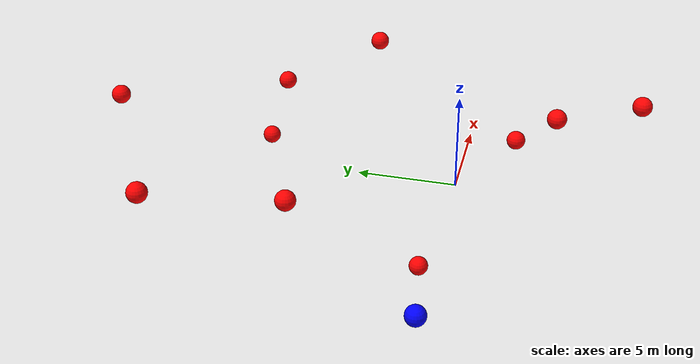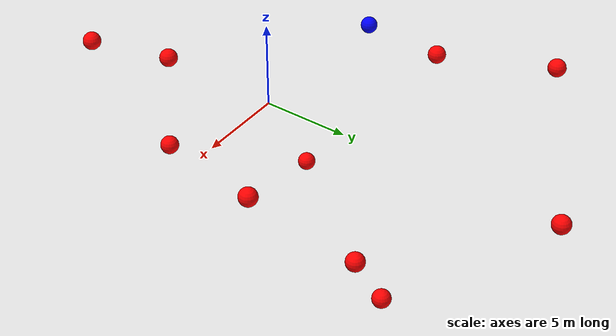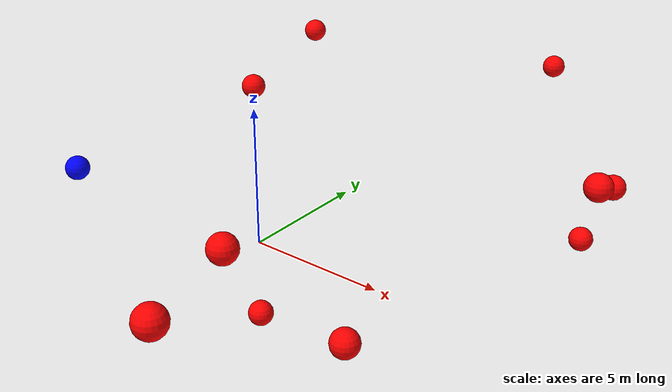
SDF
<?xml version="1.0" ?>
<sdf version="1.8">
    <world name="3d_world">
        <physics name="1ms" type="ode">
            <max_step_size>0.001</max_step_size>
            <real_time_factor>1.0</real_time_factor>
            <real_time_update_rate>1000.0</real_time_update_rate>
        </physics>
        <gravity>0 0 0</gravity>

        <plugin
            filename="gz-sim-physics-system"
            name="gz::sim::v8::systems::Physics">
        </plugin>
        <plugin
            filename="libignition-gazebo-user-commands-system.so"
            name="ignition::gazebo::systems::UserCommands">
        </plugin>
        <plugin
            filename="gz-sim-scene-broadcaster-system"
            name="gz::sim::systems::SceneBroadcaster">
        </plugin>
        <plugin
            filename="gz-sim-sensors-system"
            name="gz::sim::systems::Sensors">
            <render_engine>ogre2</render_engine>
        </plugin>

        <light type="directional" name="sun">
            <cast_shadows>true</cast_shadows>
            <pose>0 0 10 0 0 0</pose>
            <diffuse>0.8 0.8 0.8 1</diffuse>
            <specular>0.2 0.2 0.2 1</specular>
            <attenuation>
                <range>1000</range>
                <constant>0.9</constant>
                <linear>0.01</linear>
                <quadratic>0.001</quadratic>
            </attenuation>
            <direction>-0.5 0.1 -0.9</direction>
        </light>

        <!-- AGENTE -->
        <model name='agente' canonical_link='chassis'>
            <pose relative_to='world'>-10.0 0 0.0 0 0 0</pose>
            <link name='chassis'>
                <pose relative_to='__model__'>0.0 0 0.0 0 0 0</pose>
                <inertial>
                    <mass>1.14395</mass>
                    <inertia>
                        <ixx>0.095329</ixx>
                        <ixy>0</ixy>
                        <ixz>0</ixz>
                        <iyy>0.381317</iyy>
                        <iyz>0</iyz>
                        <izz>0.476646</izz>
                    </inertia>
                </inertial>
                <visual name='visual'>
                    <geometry>
                        <sphere>
                            <radius>0.5</radius>
                        </sphere>
                    </geometry>
                    <material>
                        <ambient>0.0 0.0 1.0 1</ambient>
                        <diffuse>0.0 0.0 1.0 1</diffuse>
                        <specular>0.0 0.0 1.0 1</specular>
                    </material>
                </visual>
                <collision name='collision'>
                    <geometry>
                        <sphere>
                            <radius>0.5</radius>
                        </sphere>
                    </geometry>
                </collision>
                <enable_gravity>false</enable_gravity>
            </link>

            <link name='lidar_link'>
                <pose relative_to='chassis'>0.0 0 0.1 0 0 0</pose>
                <inertial>
                    <mass>0.1</mass>
                    <inertia>
                        <ixx>0.000166667</ixx>
                        <iyy>0.000166667</iyy>
                        <izz>0.000166667</izz>
                    </inertia>
                </inertial>
                <collision name='collision'>
                    <geometry>
                        <cylinder>
                            <radius>0.05</radius>
                            <length>0.1</length>
                        </cylinder>
                    </geometry>
                </collision>
                <visual name='visual'>
                    <geometry>
                        <cylinder>
                            <radius>0.05</radius>
                            <length>0.1</length>
                        </cylinder>
                    </geometry>
                    <material>
                        <ambient>0.0 1.0 0.0 1</ambient>
                        <diffuse>0.0 1.0 0.0 1</diffuse>
                        <specular>0.0 1.0 0.0 1</specular>
                    </material>
                </visual>
                <sensor name="lidar" type="gpu_lidar">
                    <topic>scan</topic>
                    <update_rate>10</update_rate>
                    <lidar>
                        <scan>
                            <horizontal>
                                <samples>5000</samples>
                                <resolution>1</resolution>
                                <min_angle>-3.14159</min_angle>
                                <max_angle>3.14159</max_angle>
                            </horizontal>
                        </scan>
                        <range>
                            <min>0.1</min>
                            <max>10.0</max>
                            <resolution>0.01</resolution>
                        </range>
                    </lidar>
                    <visualize>true</visualize>
                    <always_on>true</always_on>
                    <update_rate>10</update_rate>
                    <pose_frame>lidar</pose_frame>
                </sensor>
                <enable_gravity>false</enable_gravity>
            </link>

            <joint name="lidar_joint" type="fixed">
                <parent>chassis</parent>
                <child>lidar_link</child>
            </joint>

            <plugin
                filename="ignition-gazebo-joint-state-publisher-system"
                name="ignition::gazebo::systems::JointStatePublisher">
            </plugin>
            <plugin
                filename="ignition-gazebo-odometry-publisher-system"
                name="ignition::gazebo::systems::OdometryPublisher">
                <dimensions>3</dimensions>
            </plugin>
            <plugin
                filename="ignition-gazebo-velocity-control-system"
                name="ignition::gazebo::systems::VelocityControl">
                <initial_linear>0.0 0 0</initial_linear>
                <initial_angular>0 0 0.0</initial_angular>
            </plugin>
            <plugin
                filename="libignition-gazebo-pose-publisher-system.so"
                name="ignition::gazebo::systems::PosePublisher">
                <topic>/agente/pose</topic>
                <frame_id>agente</frame_id>
                <update_rate>30</update_rate>
            </plugin>
        </model>

        <!-- OBSTACLE 1 -->
        <model name='obstacle_1' canonical_link='obstacle'>
            <static>false</static>
            <pose relative_to='world'>1.81 18.70 1.79 0 0 0</pose>
            <link name='obstacle'>
                <pose relative_to='__model__'>0.0 0 0.0 0 0 0</pose>
                <visual name='visual'>
                    <geometry>
                        <sphere>
                            <radius>0.50</radius>
                        </sphere>
                    </geometry>
                    <material>
                        <ambient>1.0 0.0 0.0 1</ambient>
                        <diffuse>1.0 0.0 0.0 1</diffuse>
                        <specular>1.0 0.0 0.0 1</specular>
                    </material>
                </visual>
                <collision name='collision'>
                    <geometry>
                        <sphere>
                            <radius>0.50</radius>
                        </sphere>
                    </geometry>
                </collision>
                <enable_gravity>false</enable_gravity>
            </link>

            <plugin
                filename="ignition-gazebo-velocity-control-system"
                name="ignition::gazebo::systems::VelocityControl">
                <initial_linear>-0.19 -1.98 -0.19</initial_linear>
                <initial_angular>0 0 0</initial_angular>
            </plugin>

            <plugin
                filename="ignition-gazebo-odometry-publisher-system"
                name="ignition::gazebo::systems::OdometryPublisher">
                <dimensions>3</dimensions>
            </plugin>
        </model>

        <!-- OBSTACLE 2 -->
        <model name='obstacle_2' canonical_link='obstacle'>
            <static>false</static>
            <pose relative_to='world'>5.64 -2.40 -0.42 0 0 0</pose>
            <link name='obstacle'>
                <pose relative_to='__model__'>0.0 0 0.0 0 0 0</pose>
                <visual name='visual'>
                    <geometry>
                        <sphere>
                            <radius>0.50</radius>
                        </sphere>
                    </geometry>
                    <material>
                        <ambient>1.0 0.0 0.0 1</ambient>
                        <diffuse>1.0 0.0 0.0 1</diffuse>
                        <specular>1.0 0.0 0.0 1</specular>
                    </material>
                </visual>
                <collision name='collision'>
                    <geometry>
                        <sphere>
                            <radius>0.50</radius>
                        </sphere>
                    </geometry>
                </collision>
                <enable_gravity>false</enable_gravity>
            </link>

            <plugin
                filename="ignition-gazebo-velocity-control-system"
                name="ignition::gazebo::systems::VelocityControl">
                <initial_linear>-1.90 0.61 0.11</initial_linear>
                <initial_angular>0 0 0</initial_angular>
            </plugin>

            <plugin
                filename="ignition-gazebo-odometry-publisher-system"
                name="ignition::gazebo::systems::OdometryPublisher">
                <dimensions>3</dimensions>
            </plugin>
        </model>

        <!-- OBSTACLE 3 -->
        <model name='obstacle_3' canonical_link='obstacle'>
            <static>false</static>
            <pose relative_to='world'>6.81 12.01 -2.82 0 0 0</pose>
            <link name='obstacle'>
                <pose relative_to='__model__'>0.0 0 0.0 0 0 0</pose>
                <visual name='visual'>
                    <geometry>
                        <sphere>
                            <radius>0.50</radius>
                        </sphere>
                    </geometry>
                    <material>
                        <ambient>1.0 0.0 0.0 1</ambient>
                        <diffuse>1.0 0.0 0.0 1</diffuse>
                        <specular>1.0 0.0 0.0 1</specular>
                    </material>
                </visual>
                <collision name='collision'>
                    <geometry>
                        <sphere>
                            <radius>0.50</radius>
                        </sphere>
                    </geometry>
                </collision>
                <enable_gravity>false</enable_gravity>
            </link>

            <plugin
                filename="ignition-gazebo-velocity-control-system"
                name="ignition::gazebo::systems::VelocityControl">
                <initial_linear>-0.31 -1.92 0.45</initial_linear>
                <initial_angular>0 0 0</initial_angular>
            </plugin>

            <plugin
                filename="ignition-gazebo-odometry-publisher-system"
                name="ignition::gazebo::systems::OdometryPublisher">
                <dimensions>3</dimensions>
            </plugin>
        </model>

        <!-- OBSTACLE 4 -->
        <model name='obstacle_4' canonical_link='obstacle'>
            <static>false</static>
            <pose relative_to='world'>-8.19 13.18 3.01 0 0 0</pose>
            <link name='obstacle'>
                <pose relative_to='__model__'>0.0 0 0.0 0 0 0</pose>
                <visual name='visual'>
                    <geometry>
                        <sphere>
                            <radius>0.50</radius>
                        </sphere>
                    </geometry>
                    <material>
                        <ambient>1.0 0.0 0.0 1</ambient>
                        <diffuse>1.0 0.0 0.0 1</diffuse>
                        <specular>1.0 0.0 0.0 1</specular>
                    </material>
                </visual>
                <collision name='collision'>
                    <geometry>
                        <sphere>
                            <radius>0.50</radius>
                        </sphere>
                    </geometry>
                </collision>
                <enable_gravity>false</enable_gravity>
            </link>

            <plugin
                filename="ignition-gazebo-velocity-control-system"
                name="ignition::gazebo::systems::VelocityControl">
                <initial_linear>1.31 -1.47 -0.34</initial_linear>
                <initial_angular>0 0 0</initial_angular>
            </plugin>

            <plugin
                filename="ignition-gazebo-odometry-publisher-system"
                name="ignition::gazebo::systems::OdometryPublisher">
                <dimensions>3</dimensions>
            </plugin>
        </model>

        <!-- OBSTACLE 5 -->
        <model name='obstacle_5' canonical_link='obstacle'>
            <static>false</static>
            <pose relative_to='world'>2.87 -4.56 2.84 0 0 0</pose>
            <link name='obstacle'>
                <pose relative_to='__model__'>0.0 0 0.0 0 0 0</pose>
                <visual name='visual'>
                    <geometry>
                        <sphere>
                            <radius>0.50</radius>
                        </sphere>
                    </geometry>
                    <material>
                        <ambient>1.0 0.0 0.0 1</ambient>
                        <diffuse>1.0 0.0 0.0 1</diffuse>
                        <specular>1.0 0.0 0.0 1</specular>
                    </material>
                </visual>
                <collision name='collision'>
                    <geometry>
                        <sphere>
                            <radius>0.50</radius>
                        </sphere>
                    </geometry>
                </collision>
                <enable_gravity>false</enable_gravity>
            </link>

            <plugin
                filename="ignition-gazebo-velocity-control-system"
                name="ignition::gazebo::systems::VelocityControl">
                <initial_linear>0.40 0.74 -0.46</initial_linear>
                <initial_angular>0 0 0</initial_angular>
            </plugin>

            <plugin
                filename="ignition-gazebo-odometry-publisher-system"
                name="ignition::gazebo::systems::OdometryPublisher">
                <dimensions>3</dimensions>
            </plugin>
        </model>

        <!-- OBSTACLE 6 -->
        <model name='obstacle_6' canonical_link='obstacle'>
            <static>false</static>
            <pose relative_to='world'>9.57 6.11 2.68 0 0 0</pose>
            <link name='obstacle'>
                <pose relative_to='__model__'>0.0 0 0.0 0 0 0</pose>
                <visual name='visual'>
                    <geometry>
                        <sphere>
                            <radius>0.50</radius>
                        </sphere>
                    </geometry>
                    <material>
                        <ambient>1.0 0.0 0.0 1</ambient>
                        <diffuse>1.0 0.0 0.0 1</diffuse>
                        <specular>1.0 0.0 0.0 1</specular>
                    </material>
                </visual>
                <collision name='collision'>
                    <geometry>
                        <sphere>
                            <radius>0.50</radius>
                        </sphere>
                    </geometry>
                </collision>
                <enable_gravity>false</enable_gravity>
            </link>

            <plugin
                filename="ignition-gazebo-velocity-control-system"
                name="ignition::gazebo::systems::VelocityControl">
                <initial_linear>-1.51 -1.20 -0.52</initial_linear>
                <initial_angular>0 0 0</initial_angular>
            </plugin>

            <plugin
                filename="ignition-gazebo-odometry-publisher-system"
                name="ignition::gazebo::systems::OdometryPublisher">
                <dimensions>3</dimensions>
            </plugin>
        </model>

        <!-- OBSTACLE 7 -->
        <model name='obstacle_7' canonical_link='obstacle'>
            <static>false</static>
            <pose relative_to='world'>-6.41 6.81 2.39 0 0 0</pose>
            <link name='obstacle'>
                <pose relative_to='__model__'>0.0 0 0.0 0 0 0</pose>
                <visual name='visual'>
                    <geometry>
                        <sphere>
                            <radius>0.50</radius>
                        </sphere>
                    </geometry>
                    <material>
                        <ambient>1.0 0.0 0.0 1</ambient>
                        <diffuse>1.0 0.0 0.0 1</diffuse>
                        <specular>1.0 0.0 0.0 1</specular>
                    </material>
                </visual>
                <collision name='collision'>
                    <geometry>
                        <sphere>
                            <radius>0.50</radius>
                        </sphere>
                    </geometry>
                </collision>
                <enable_gravity>false</enable_gravity>
            </link>

            <plugin
                filename="ignition-gazebo-velocity-control-system"
                name="ignition::gazebo::systems::VelocityControl">
                <initial_linear>1.52 -1.23 -0.43</initial_linear>
                <initial_angular>0 0 0</initial_angular>
            </plugin>

            <plugin
                filename="ignition-gazebo-odometry-publisher-system"
                name="ignition::gazebo::systems::OdometryPublisher">
                <dimensions>3</dimensions>
            </plugin>
        </model>

        <!-- OBSTACLE 8 -->
        <model name='obstacle_8' canonical_link='obstacle'>
            <static>false</static>
            <pose relative_to='world'>8.14 11.30 0.22 0 0 0</pose>
            <link name='obstacle'>
                <pose relative_to='__model__'>0.0 0 0.0 0 0 0</pose>
                <visual name='visual'>
                    <geometry>
                        <sphere>
                            <radius>0.50</radius>
                        </sphere>
                    </geometry>
                    <material>
                        <ambient>1.0 0.0 0.0 1</ambient>
                        <diffuse>1.0 0.0 0.0 1</diffuse>
                        <specular>1.0 0.0 0.0 1</specular>
                    </material>
                </visual>
                <collision name='collision'>
                    <geometry>
                        <sphere>
                            <radius>0.50</radius>
                        </sphere>
                    </geometry>
                </collision>
                <enable_gravity>false</enable_gravity>
            </link>

            <plugin
                filename="ignition-gazebo-velocity-control-system"
                name="ignition::gazebo::systems::VelocityControl">
                <initial_linear>-0.31 -1.75 -0.03</initial_linear>
                <initial_angular>0 0 0</initial_angular>
            </plugin>

            <plugin
                filename="ignition-gazebo-odometry-publisher-system"
                name="ignition::gazebo::systems::OdometryPublisher">
                <dimensions>3</dimensions>
            </plugin>
        </model>

        <!-- OBSTACLE 9 -->
        <model name='obstacle_9' canonical_link='obstacle'>
            <static>false</static>
            <pose relative_to='world'>-1.46 1.49 -4.30 0 0 0</pose>
            <link name='obstacle'>
                <pose relative_to='__model__'>0.0 0 0.0 0 0 0</pose>
                <visual name='visual'>
                    <geometry>
                        <sphere>
                            <radius>0.50</radius>
                        </sphere>
                    </geometry>
                    <material>
                        <ambient>1.0 0.0 0.0 1</ambient>
                        <diffuse>1.0 0.0 0.0 1</diffuse>
                        <specular>1.0 0.0 0.0 1</specular>
                    </material>
                </visual>
                <collision name='collision'>
                    <geometry>
                        <sphere>
                            <radius>0.50</radius>
                        </sphere>
                    </geometry>
                </collision>
                <enable_gravity>false</enable_gravity>
            </link>

            <plugin
                filename="ignition-gazebo-velocity-control-system"
                name="ignition::gazebo::systems::VelocityControl">
                <initial_linear>0.68 -0.32 0.91</initial_linear>
                <initial_angular>0 0 0</initial_angular>
            </plugin>

            <plugin
                filename="ignition-gazebo-odometry-publisher-system"
                name="ignition::gazebo::systems::OdometryPublisher">
                <dimensions>3</dimensions>
            </plugin>
        </model>

        <!-- OBSTACLE 10 -->
        <model name='obstacle_10' canonical_link='obstacle'>
            <static>false</static>
            <pose relative_to='world'>4.44 -8.67 3.22 0 0 0</pose>
            <link name='obstacle'>
                <pose relative_to='__model__'>0.0 0 0.0 0 0 0</pose>
                <visual name='visual'>
                    <geometry>
                        <sphere>
                            <radius>0.50</radius>
                        </sphere>
                    </geometry>
                    <material>
                        <ambient>1.0 0.0 0.0 1</ambient>
                        <diffuse>1.0 0.0 0.0 1</diffuse>
                        <specular>1.0 0.0 0.0 1</specular>
                    </material>
                </visual>
                <collision name='collision'>
                    <geometry>
                        <sphere>
                            <radius>0.50</radius>
                        </sphere>
                    </geometry>
                </collision>
                <enable_gravity>false</enable_gravity>
            </link>

            <plugin
                filename="ignition-gazebo-velocity-control-system"
                name="ignition::gazebo::systems::VelocityControl">
                <initial_linear>-0.96 1.65 -0.61</initial_linear>
                <initial_angular>0 0 0</initial_angular>
            </plugin>

            <plugin
                filename="ignition-gazebo-odometry-publisher-system"
                name="ignition::gazebo::systems::OdometryPublisher">
                <dimensions>3</dimensions>
            </plugin>
        </model>

    </world>
</sdf>
